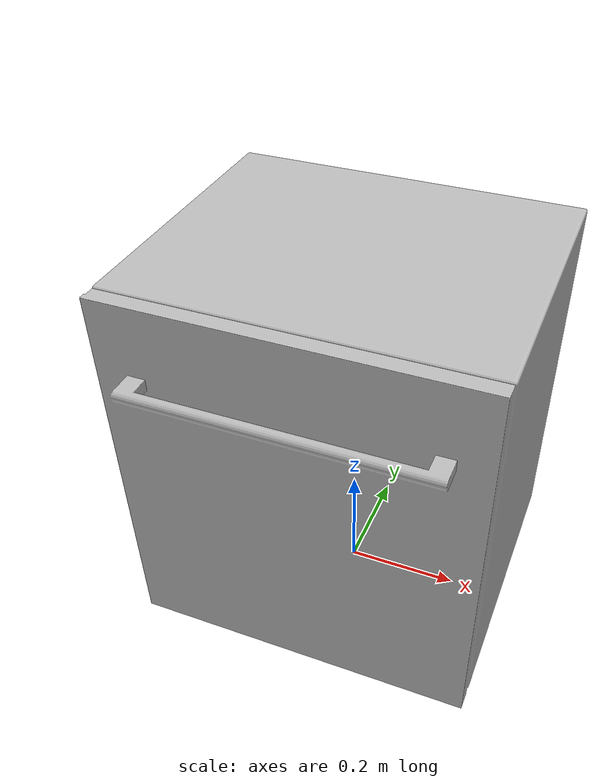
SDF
<?xml version='1.0'?>
<sdf version='1.6'>
  <model name='10_DishWasher'>
    <link name='body'>
	  <inertial>
        <mass>30</mass>
        <pose frame=''>0 0 0 0 0 0</pose>
        <inertia>
          <ixx>1.86624999</ixx>
          <ixy>0</ixy>
          <ixz>0</ixz>
          <iyy>2.09024999</iyy>
          <iyz>0</iyz>
          <izz>1.576</izz>
        </inertia>
      </inertial>
      <pose frame=''>0 0 0 0 -0 0</pose>
      <self_collide>0</self_collide>
      <kinematic>0</kinematic>
      <gravity>1</gravity>
      <visual name='visual'>
        <geometry>
          <mesh>
            <uri>model://DishWasher_f2d1aeaead9b_lod0/meshes/visual_LowPoly_10_DishWasher.dae</uri>
          </mesh>
        </geometry>
		<meta> <layer> 1 </layer></meta>
      </visual>
      <collision name='collision_0'>
        <laser_retro>0</laser_retro>
        <max_contacts>10</max_contacts>
        <pose frame=''>0 0 0 0 -0 0</pose>
        <geometry>
          <mesh>
            <uri>model://DishWasher_f2d1aeaead9b_lod0/meshes/collision_10_DishWasher.dae</uri>
            <scale>1 1 1</scale>
          </mesh>
        </geometry>
		<surface>
          <friction>
            <ode>
              <mu>0.4</mu>
              <mu2>0.4</mu2>
              <fdir1>0 0 0</fdir1>
              <slip1>0</slip1>
              <slip2>0</slip2>
            </ode>
            <torsional>
              <coefficient>1</coefficient>
              <patch_radius>0</patch_radius>
              <surface_radius>0</surface_radius>
              <use_patch_radius>1</use_patch_radius>
              <ode>
                <slip>0</slip>
              </ode>
            </torsional>
          </friction>
        </surface>
      </collision>
    </link>
    <static>true</static>
  </model>
</sdf>
